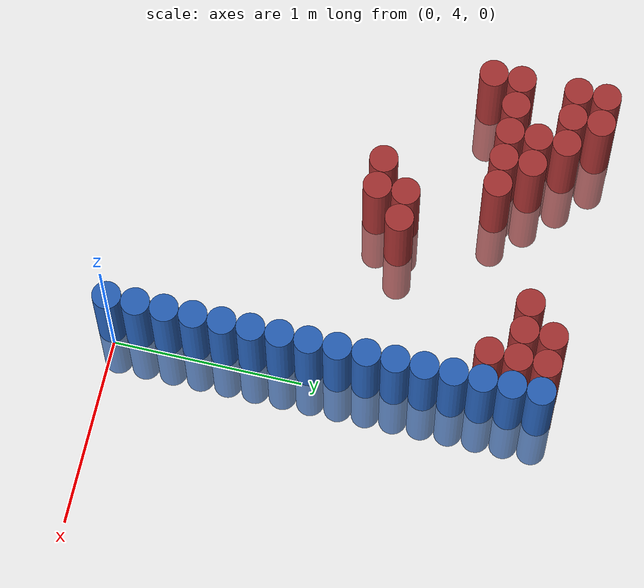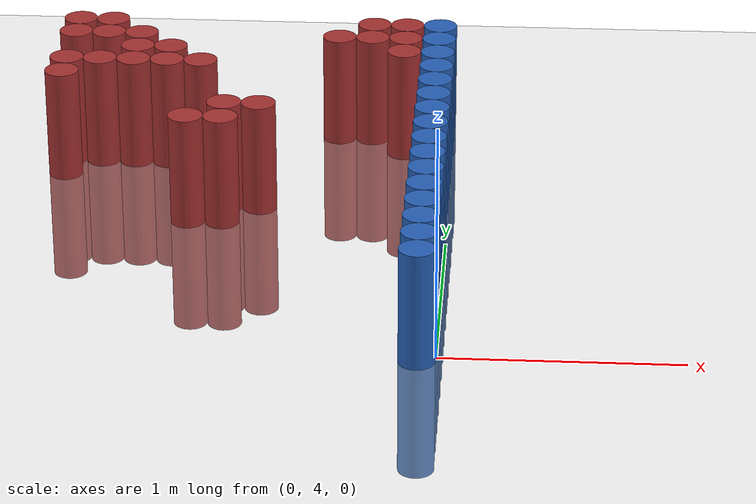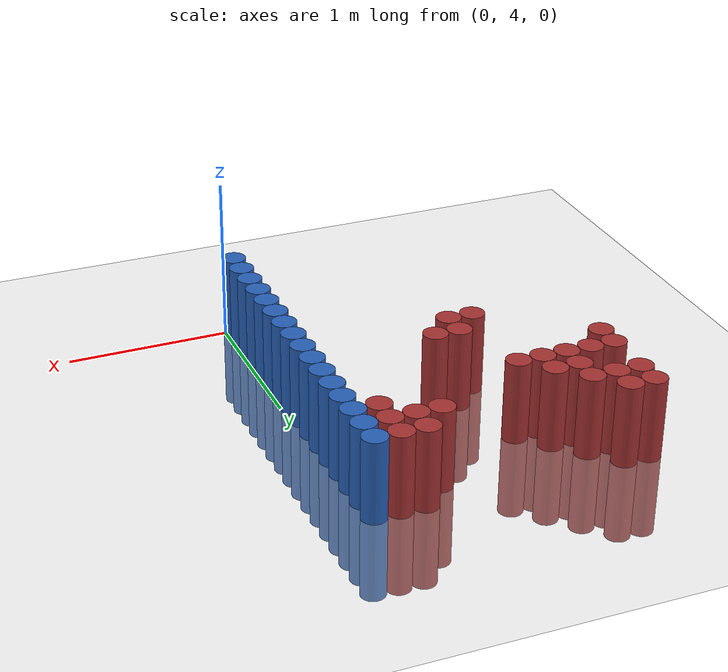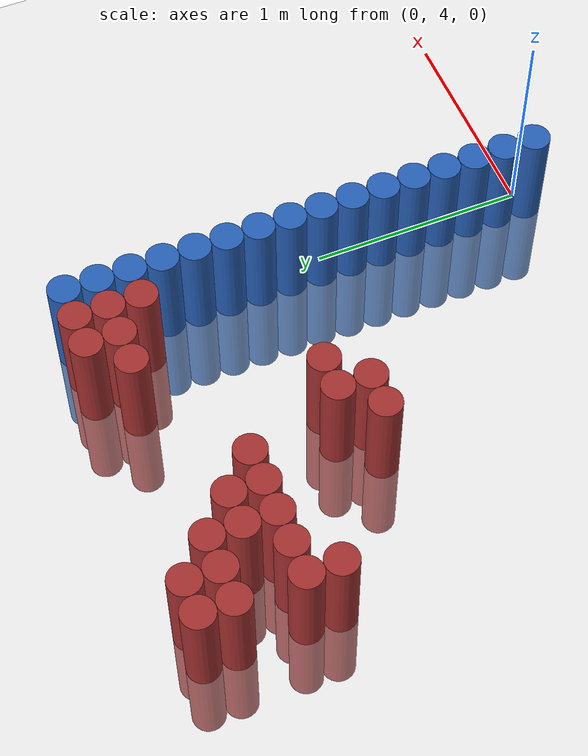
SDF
<sdf version="1.6">
 <world name="default">
  <model name="ground_plane">
   <static>1</static>
   <link name="link">
    <collision name="collision">
     <geometry><plane><normal>0 0 1</normal><size>100 100</size></plane></geometry>
     <surface><friction><ode><mu>100</mu><mu2>50</mu2></ode></friction></surface>
    </collision>
    <visual name="visual">
     <cast_shadows>0</cast_shadows>
     <geometry><plane><normal>0 0 1</normal><size>100 100</size></plane></geometry>
     <material>
      <script><uri>file://media/materials/scripts/gazebo.material</uri><name>Gazebo/Grey</name></script>
     </material>
    </visual>
   </link>
  </model>
  <model name="unit_cylinder_80">
   <static>1</static>
   <pose>-0.075000 3.975000 0.000000 0.000000 0.000000 0.000000</pose>
   <link name="link">
    <inertial>
     <mass>1</mass>
     <inertia><ixx>0.145833</ixx><ixy>0</ixy><ixz>0</ixz><iyy>0.145833</iyy><iyz>0</iyz><izz>0.125</izz></inertia>
    </inertial>
    <collision name="collision">
     <geometry><cylinder><radius>0.075000</radius><length>1</length></cylinder></geometry>
    </collision>
    <visual name="visual">
     <geometry><cylinder><radius>0.075000</radius><length>1</length></cylinder></geometry>
     <material>
      <ambient>0.152000 0.379000 0.720000 1</ambient>
      <diffuse>0.152000 0.379000 0.720000 1</diffuse>
     </material>
     <material>
      <script><name>Gazebo/Grey</name><uri>file://media/materials/scripts/gazebo.material</uri></script>
     </material>
    </visual>
    <sensor name="sensor_contact" type="contact"><contact><collision>collision</collision></contact></sensor>
   </link>
   <plugin filename="gz-sim-touchplugin-system" name="gz::sim::systems::TouchPlugin">
    <target>robot</target>
    <namespace>robot</namespace>
    <time>0.001</time>
    <enabled>true</enabled>
   </plugin>
  </model>
  <model name="unit_cylinder_82">
   <static>1</static>
   <pose>-0.075000 4.125000 0.000000 0.000000 0.000000 0.000000</pose>
   <link name="link">
    <inertial>
     <mass>1</mass>
     <inertia><ixx>0.145833</ixx><ixy>0</ixy><ixz>0</ixz><iyy>0.145833</iyy><iyz>0</iyz><izz>0.125</izz></inertia>
    </inertial>
    <collision name="collision">
     <geometry><cylinder><radius>0.075000</radius><length>1</length></cylinder></geometry>
    </collision>
    <visual name="visual">
     <geometry><cylinder><radius>0.075000</radius><length>1</length></cylinder></geometry>
     <material>
      <ambient>0.152000 0.379000 0.720000 1</ambient>
      <diffuse>0.152000 0.379000 0.720000 1</diffuse>
     </material>
     <material>
      <script><name>Gazebo/Grey</name><uri>file://media/materials/scripts/gazebo.material</uri></script>
     </material>
    </visual>
    <sensor name="sensor_contact" type="contact"><contact><collision>collision</collision></contact></sensor>
   </link>
   <plugin filename="gz-sim-touchplugin-system" name="gz::sim::systems::TouchPlugin">
    <target>robot</target>
    <namespace>robot</namespace>
    <time>0.001</time>
    <enabled>true</enabled>
   </plugin>
  </model>
  <model name="unit_cylinder_84">
   <static>1</static>
   <pose>-0.075000 4.275000 0.000000 0.000000 0.000000 0.000000</pose>
   <link name="link">
    <inertial>
     <mass>1</mass>
     <inertia><ixx>0.145833</ixx><ixy>0</ixy><ixz>0</ixz><iyy>0.145833</iyy><iyz>0</iyz><izz>0.125</izz></inertia>
    </inertial>
    <collision name="collision">
     <geometry><cylinder><radius>0.075000</radius><length>1</length></cylinder></geometry>
    </collision>
    <visual name="visual">
     <geometry><cylinder><radius>0.075000</radius><length>1</length></cylinder></geometry>
     <material>
      <ambient>0.152000 0.379000 0.720000 1</ambient>
      <diffuse>0.152000 0.379000 0.720000 1</diffuse>
     </material>
     <material>
      <script><name>Gazebo/Grey</name><uri>file://media/materials/scripts/gazebo.material</uri></script>
     </material>
    </visual>
    <sensor name="sensor_contact" type="contact"><contact><collision>collision</collision></contact></sensor>
   </link>
   <plugin filename="gz-sim-touchplugin-system" name="gz::sim::systems::TouchPlugin">
    <target>robot</target>
    <namespace>robot</namespace>
    <time>0.001</time>
    <enabled>true</enabled>
   </plugin>
  </model>
  <model name="unit_cylinder_86">
   <static>1</static>
   <pose>-0.075000 4.425000 0.000000 0.000000 0.000000 0.000000</pose>
   <link name="link">
    <inertial>
     <mass>1</mass>
     <inertia><ixx>0.145833</ixx><ixy>0</ixy><ixz>0</ixz><iyy>0.145833</iyy><iyz>0</iyz><izz>0.125</izz></inertia>
    </inertial>
    <collision name="collision">
     <geometry><cylinder><radius>0.075000</radius><length>1</length></cylinder></geometry>
    </collision>
    <visual name="visual">
     <geometry><cylinder><radius>0.075000</radius><length>1</length></cylinder></geometry>
     <material>
      <ambient>0.152000 0.379000 0.720000 1</ambient>
      <diffuse>0.152000 0.379000 0.720000 1</diffuse>
     </material>
     <material>
      <script><name>Gazebo/Grey</name><uri>file://media/materials/scripts/gazebo.material</uri></script>
     </material>
    </visual>
    <sensor name="sensor_contact" type="contact"><contact><collision>collision</collision></contact></sensor>
   </link>
   <plugin filename="gz-sim-touchplugin-system" name="gz::sim::systems::TouchPlugin">
    <target>robot</target>
    <namespace>robot</namespace>
    <time>0.001</time>
    <enabled>true</enabled>
   </plugin>
  </model>
  <model name="unit_cylinder_88">
   <static>1</static>
   <pose>-0.075000 4.575000 0.000000 0.000000 0.000000 0.000000</pose>
   <link name="link">
    <inertial>
     <mass>1</mass>
     <inertia><ixx>0.145833</ixx><ixy>0</ixy><ixz>0</ixz><iyy>0.145833</iyy><iyz>0</iyz><izz>0.125</izz></inertia>
    </inertial>
    <collision name="collision">
     <geometry><cylinder><radius>0.075000</radius><length>1</length></cylinder></geometry>
    </collision>
    <visual name="visual">
     <geometry><cylinder><radius>0.075000</radius><length>1</length></cylinder></geometry>
     <material>
      <ambient>0.152000 0.379000 0.720000 1</ambient>
      <diffuse>0.152000 0.379000 0.720000 1</diffuse>
     </material>
     <material>
      <script><name>Gazebo/Grey</name><uri>file://media/materials/scripts/gazebo.material</uri></script>
     </material>
    </visual>
    <sensor name="sensor_contact" type="contact"><contact><collision>collision</collision></contact></sensor>
   </link>
   <plugin filename="gz-sim-touchplugin-system" name="gz::sim::systems::TouchPlugin">
    <target>robot</target>
    <namespace>robot</namespace>
    <time>0.001</time>
    <enabled>true</enabled>
   </plugin>
  </model>
  <model name="unit_cylinder_90">
   <static>1</static>
   <pose>-0.075000 4.725000 0.000000 0.000000 0.000000 0.000000</pose>
   <link name="link">
    <inertial>
     <mass>1</mass>
     <inertia><ixx>0.145833</ixx><ixy>0</ixy><ixz>0</ixz><iyy>0.145833</iyy><iyz>0</iyz><izz>0.125</izz></inertia>
    </inertial>
    <collision name="collision">
     <geometry><cylinder><radius>0.075000</radius><length>1</length></cylinder></geometry>
    </collision>
    <visual name="visual">
     <geometry><cylinder><radius>0.075000</radius><length>1</length></cylinder></geometry>
     <material>
      <ambient>0.152000 0.379000 0.720000 1</ambient>
      <diffuse>0.152000 0.379000 0.720000 1</diffuse>
     </material>
     <material>
      <script><name>Gazebo/Grey</name><uri>file://media/materials/scripts/gazebo.material</uri></script>
     </material>
    </visual>
    <sensor name="sensor_contact" type="contact"><contact><collision>collision</collision></contact></sensor>
   </link>
   <plugin filename="gz-sim-touchplugin-system" name="gz::sim::systems::TouchPlugin">
    <target>robot</target>
    <namespace>robot</namespace>
    <time>0.001</time>
    <enabled>true</enabled>
   </plugin>
  </model>
  <model name="unit_cylinder_92">
   <static>1</static>
   <pose>-0.075000 4.875000 0.000000 0.000000 0.000000 0.000000</pose>
   <link name="link">
    <inertial>
     <mass>1</mass>
     <inertia><ixx>0.145833</ixx><ixy>0</ixy><ixz>0</ixz><iyy>0.145833</iyy><iyz>0</iyz><izz>0.125</izz></inertia>
    </inertial>
    <collision name="collision">
     <geometry><cylinder><radius>0.075000</radius><length>1</length></cylinder></geometry>
    </collision>
    <visual name="visual">
     <geometry><cylinder><radius>0.075000</radius><length>1</length></cylinder></geometry>
     <material>
      <ambient>0.152000 0.379000 0.720000 1</ambient>
      <diffuse>0.152000 0.379000 0.720000 1</diffuse>
     </material>
     <material>
      <script><name>Gazebo/Grey</name><uri>file://media/materials/scripts/gazebo.material</uri></script>
     </material>
    </visual>
    <sensor name="sensor_contact" type="contact"><contact><collision>collision</collision></contact></sensor>
   </link>
   <plugin filename="gz-sim-touchplugin-system" name="gz::sim::systems::TouchPlugin">
    <target>robot</target>
    <namespace>robot</namespace>
    <time>0.001</time>
    <enabled>true</enabled>
   </plugin>
  </model>
  <model name="unit_cylinder_94">
   <static>1</static>
   <pose>-0.075000 5.025000 0.000000 0.000000 0.000000 0.000000</pose>
   <link name="link">
    <inertial>
     <mass>1</mass>
     <inertia><ixx>0.145833</ixx><ixy>0</ixy><ixz>0</ixz><iyy>0.145833</iyy><iyz>0</iyz><izz>0.125</izz></inertia>
    </inertial>
    <collision name="collision">
     <geometry><cylinder><radius>0.075000</radius><length>1</length></cylinder></geometry>
    </collision>
    <visual name="visual">
     <geometry><cylinder><radius>0.075000</radius><length>1</length></cylinder></geometry>
     <material>
      <ambient>0.152000 0.379000 0.720000 1</ambient>
      <diffuse>0.152000 0.379000 0.720000 1</diffuse>
     </material>
     <material>
      <script><name>Gazebo/Grey</name><uri>file://media/materials/scripts/gazebo.material</uri></script>
     </material>
    </visual>
    <sensor name="sensor_contact" type="contact"><contact><collision>collision</collision></contact></sensor>
   </link>
   <plugin filename="gz-sim-touchplugin-system" name="gz::sim::systems::TouchPlugin">
    <target>robot</target>
    <namespace>robot</namespace>
    <time>0.001</time>
    <enabled>true</enabled>
   </plugin>
  </model>
  <model name="unit_cylinder_193">
   <static>1</static>
   <pose>-1.725000 5.625000 0.000000 0.000000 0.000000 0.000000</pose>
   <link name="link">
    <inertial>
     <mass>1</mass>
     <inertia><ixx>0.145833</ixx><ixy>0</ixy><ixz>0</ixz><iyy>0.145833</iyy><iyz>0</iyz><izz>0.125</izz></inertia>
    </inertial>
    <collision name="collision">
     <geometry><cylinder><radius>0.075000</radius><length>1</length></cylinder></geometry>
    </collision>
    <visual name="visual">
     <geometry><cylinder><radius>0.075000</radius><length>1</length></cylinder></geometry>
     <material>
      <ambient>0.648000 0.192000 0.192000 1</ambient>
      <diffuse>0.648000 0.192000 0.192000 1</diffuse>
     </material>
     <material>
      <script><name>Gazebo/Grey</name><uri>file://media/materials/scripts/gazebo.material</uri></script>
     </material>
    </visual>
    <sensor name="sensor_contact" type="contact"><contact><collision>collision</collision></contact></sensor>
   </link>
   <plugin filename="gz-sim-touchplugin-system" name="gz::sim::systems::TouchPlugin">
    <target>robot</target>
    <namespace>robot</namespace>
    <time>0.001</time>
    <enabled>true</enabled>
   </plugin>
  </model>
  <model name="unit_cylinder_194">
   <static>1</static>
   <pose>-1.725000 5.775000 0.000000 0.000000 0.000000 0.000000</pose>
   <link name="link">
    <inertial>
     <mass>1</mass>
     <inertia><ixx>0.145833</ixx><ixy>0</ixy><ixz>0</ixz><iyy>0.145833</iyy><iyz>0</iyz><izz>0.125</izz></inertia>
    </inertial>
    <collision name="collision">
     <geometry><cylinder><radius>0.075000</radius><length>1</length></cylinder></geometry>
    </collision>
    <visual name="visual">
     <geometry><cylinder><radius>0.075000</radius><length>1</length></cylinder></geometry>
     <material>
      <ambient>0.648000 0.192000 0.192000 1</ambient>
      <diffuse>0.648000 0.192000 0.192000 1</diffuse>
     </material>
     <material>
      <script><name>Gazebo/Grey</name><uri>file://media/materials/scripts/gazebo.material</uri></script>
     </material>
    </visual>
    <sensor name="sensor_contact" type="contact"><contact><collision>collision</collision></contact></sensor>
   </link>
   <plugin filename="gz-sim-touchplugin-system" name="gz::sim::systems::TouchPlugin">
    <target>robot</target>
    <namespace>robot</namespace>
    <time>0.001</time>
    <enabled>true</enabled>
   </plugin>
  </model>
  <model name="unit_cylinder_195">
   <static>1</static>
   <pose>-1.725000 6.075000 0.000000 0.000000 0.000000 0.000000</pose>
   <link name="link">
    <inertial>
     <mass>1</mass>
     <inertia><ixx>0.145833</ixx><ixy>0</ixy><ixz>0</ixz><iyy>0.145833</iyy><iyz>0</iyz><izz>0.125</izz></inertia>
    </inertial>
    <collision name="collision">
     <geometry><cylinder><radius>0.075000</radius><length>1</length></cylinder></geometry>
    </collision>
    <visual name="visual">
     <geometry><cylinder><radius>0.075000</radius><length>1</length></cylinder></geometry>
     <material>
      <ambient>0.648000 0.192000 0.192000 1</ambient>
      <diffuse>0.648000 0.192000 0.192000 1</diffuse>
     </material>
     <material>
      <script><name>Gazebo/Grey</name><uri>file://media/materials/scripts/gazebo.material</uri></script>
     </material>
    </visual>
    <sensor name="sensor_contact" type="contact"><contact><collision>collision</collision></contact></sensor>
   </link>
   <plugin filename="gz-sim-touchplugin-system" name="gz::sim::systems::TouchPlugin">
    <target>robot</target>
    <namespace>robot</namespace>
    <time>0.001</time>
    <enabled>true</enabled>
   </plugin>
  </model>
  <model name="unit_cylinder_196">
   <static>1</static>
   <pose>-1.725000 6.225000 0.000000 0.000000 0.000000 0.000000</pose>
   <link name="link">
    <inertial>
     <mass>1</mass>
     <inertia><ixx>0.145833</ixx><ixy>0</ixy><ixz>0</ixz><iyy>0.145833</iyy><iyz>0</iyz><izz>0.125</izz></inertia>
    </inertial>
    <collision name="collision">
     <geometry><cylinder><radius>0.075000</radius><length>1</length></cylinder></geometry>
    </collision>
    <visual name="visual">
     <geometry><cylinder><radius>0.075000</radius><length>1</length></cylinder></geometry>
     <material>
      <ambient>0.648000 0.192000 0.192000 1</ambient>
      <diffuse>0.648000 0.192000 0.192000 1</diffuse>
     </material>
     <material>
      <script><name>Gazebo/Grey</name><uri>file://media/materials/scripts/gazebo.material</uri></script>
     </material>
    </visual>
    <sensor name="sensor_contact" type="contact"><contact><collision>collision</collision></contact></sensor>
   </link>
   <plugin filename="gz-sim-touchplugin-system" name="gz::sim::systems::TouchPlugin">
    <target>robot</target>
    <namespace>robot</namespace>
    <time>0.001</time>
    <enabled>true</enabled>
   </plugin>
  </model>
  <model name="unit_cylinder_204">
   <static>1</static>
   <pose>-1.575000 5.775000 0.000000 0.000000 0.000000 0.000000</pose>
   <link name="link">
    <inertial>
     <mass>1</mass>
     <inertia><ixx>0.145833</ixx><ixy>0</ixy><ixz>0</ixz><iyy>0.145833</iyy><iyz>0</iyz><izz>0.125</izz></inertia>
    </inertial>
    <collision name="collision">
     <geometry><cylinder><radius>0.075000</radius><length>1</length></cylinder></geometry>
    </collision>
    <visual name="visual">
     <geometry><cylinder><radius>0.075000</radius><length>1</length></cylinder></geometry>
     <material>
      <ambient>0.648000 0.192000 0.192000 1</ambient>
      <diffuse>0.648000 0.192000 0.192000 1</diffuse>
     </material>
     <material>
      <script><name>Gazebo/Grey</name><uri>file://media/materials/scripts/gazebo.material</uri></script>
     </material>
    </visual>
    <sensor name="sensor_contact" type="contact"><contact><collision>collision</collision></contact></sensor>
   </link>
   <plugin filename="gz-sim-touchplugin-system" name="gz::sim::systems::TouchPlugin">
    <target>robot</target>
    <namespace>robot</namespace>
    <time>0.001</time>
    <enabled>true</enabled>
   </plugin>
  </model>
  <model name="unit_cylinder_205">
   <static>1</static>
   <pose>-1.575000 6.075000 0.000000 0.000000 0.000000 0.000000</pose>
   <link name="link">
    <inertial>
     <mass>1</mass>
     <inertia><ixx>0.145833</ixx><ixy>0</ixy><ixz>0</ixz><iyy>0.145833</iyy><iyz>0</iyz><izz>0.125</izz></inertia>
    </inertial>
    <collision name="collision">
     <geometry><cylinder><radius>0.075000</radius><length>1</length></cylinder></geometry>
    </collision>
    <visual name="visual">
     <geometry><cylinder><radius>0.075000</radius><length>1</length></cylinder></geometry>
     <material>
      <ambient>0.648000 0.192000 0.192000 1</ambient>
      <diffuse>0.648000 0.192000 0.192000 1</diffuse>
     </material>
     <material>
      <script><name>Gazebo/Grey</name><uri>file://media/materials/scripts/gazebo.material</uri></script>
     </material>
    </visual>
    <sensor name="sensor_contact" type="contact"><contact><collision>collision</collision></contact></sensor>
   </link>
   <plugin filename="gz-sim-touchplugin-system" name="gz::sim::systems::TouchPlugin">
    <target>robot</target>
    <namespace>robot</namespace>
    <time>0.001</time>
    <enabled>true</enabled>
   </plugin>
  </model>
  <model name="unit_cylinder_206">
   <static>1</static>
   <pose>-1.575000 6.225000 0.000000 0.000000 0.000000 0.000000</pose>
   <link name="link">
    <inertial>
     <mass>1</mass>
     <inertia><ixx>0.145833</ixx><ixy>0</ixy><ixz>0</ixz><iyy>0.145833</iyy><iyz>0</iyz><izz>0.125</izz></inertia>
    </inertial>
    <collision name="collision">
     <geometry><cylinder><radius>0.075000</radius><length>1</length></cylinder></geometry>
    </collision>
    <visual name="visual">
     <geometry><cylinder><radius>0.075000</radius><length>1</length></cylinder></geometry>
     <material>
      <ambient>0.648000 0.192000 0.192000 1</ambient>
      <diffuse>0.648000 0.192000 0.192000 1</diffuse>
     </material>
     <material>
      <script><name>Gazebo/Grey</name><uri>file://media/materials/scripts/gazebo.material</uri></script>
     </material>
    </visual>
    <sensor name="sensor_contact" type="contact"><contact><collision>collision</collision></contact></sensor>
   </link>
   <plugin filename="gz-sim-touchplugin-system" name="gz::sim::systems::TouchPlugin">
    <target>robot</target>
    <namespace>robot</namespace>
    <time>0.001</time>
    <enabled>true</enabled>
   </plugin>
  </model>
  <model name="unit_cylinder_212">
   <static>1</static>
   <pose>-1.425000 5.775000 0.000000 0.000000 0.000000 0.000000</pose>
   <link name="link">
    <inertial>
     <mass>1</mass>
     <inertia><ixx>0.145833</ixx><ixy>0</ixy><ixz>0</ixz><iyy>0.145833</iyy><iyz>0</iyz><izz>0.125</izz></inertia>
    </inertial>
    <collision name="collision">
     <geometry><cylinder><radius>0.075000</radius><length>1</length></cylinder></geometry>
    </collision>
    <visual name="visual">
     <geometry><cylinder><radius>0.075000</radius><length>1</length></cylinder></geometry>
     <material>
      <ambient>0.648000 0.192000 0.192000 1</ambient>
      <diffuse>0.648000 0.192000 0.192000 1</diffuse>
     </material>
     <material>
      <script><name>Gazebo/Grey</name><uri>file://media/materials/scripts/gazebo.material</uri></script>
     </material>
    </visual>
    <sensor name="sensor_contact" type="contact"><contact><collision>collision</collision></contact></sensor>
   </link>
   <plugin filename="gz-sim-touchplugin-system" name="gz::sim::systems::TouchPlugin">
    <target>robot</target>
    <namespace>robot</namespace>
    <time>0.001</time>
    <enabled>true</enabled>
   </plugin>
  </model>
  <model name="unit_cylinder_213">
   <static>1</static>
   <pose>-1.425000 5.925000 0.000000 0.000000 0.000000 0.000000</pose>
   <link name="link">
    <inertial>
     <mass>1</mass>
     <inertia><ixx>0.145833</ixx><ixy>0</ixy><ixz>0</ixz><iyy>0.145833</iyy><iyz>0</iyz><izz>0.125</izz></inertia>
    </inertial>
    <collision name="collision">
     <geometry><cylinder><radius>0.075000</radius><length>1</length></cylinder></geometry>
    </collision>
    <visual name="visual">
     <geometry><cylinder><radius>0.075000</radius><length>1</length></cylinder></geometry>
     <material>
      <ambient>0.648000 0.192000 0.192000 1</ambient>
      <diffuse>0.648000 0.192000 0.192000 1</diffuse>
     </material>
     <material>
      <script><name>Gazebo/Grey</name><uri>file://media/materials/scripts/gazebo.material</uri></script>
     </material>
    </visual>
    <sensor name="sensor_contact" type="contact"><contact><collision>collision</collision></contact></sensor>
   </link>
   <plugin filename="gz-sim-touchplugin-system" name="gz::sim::systems::TouchPlugin">
    <target>robot</target>
    <namespace>robot</namespace>
    <time>0.001</time>
    <enabled>true</enabled>
   </plugin>
  </model>
  <model name="unit_cylinder_214">
   <static>1</static>
   <pose>-1.425000 6.075000 0.000000 0.000000 0.000000 0.000000</pose>
   <link name="link">
    <inertial>
     <mass>1</mass>
     <inertia><ixx>0.145833</ixx><ixy>0</ixy><ixz>0</ixz><iyy>0.145833</iyy><iyz>0</iyz><izz>0.125</izz></inertia>
    </inertial>
    <collision name="collision">
     <geometry><cylinder><radius>0.075000</radius><length>1</length></cylinder></geometry>
    </collision>
    <visual name="visual">
     <geometry><cylinder><radius>0.075000</radius><length>1</length></cylinder></geometry>
     <material>
      <ambient>0.648000 0.192000 0.192000 1</ambient>
      <diffuse>0.648000 0.192000 0.192000 1</diffuse>
     </material>
     <material>
      <script><name>Gazebo/Grey</name><uri>file://media/materials/scripts/gazebo.material</uri></script>
     </material>
    </visual>
    <sensor name="sensor_contact" type="contact"><contact><collision>collision</collision></contact></sensor>
   </link>
   <plugin filename="gz-sim-touchplugin-system" name="gz::sim::systems::TouchPlugin">
    <target>robot</target>
    <namespace>robot</namespace>
    <time>0.001</time>
    <enabled>true</enabled>
   </plugin>
  </model>
  <model name="unit_cylinder_220">
   <static>1</static>
   <pose>-1.275000 5.775000 0.000000 0.000000 0.000000 0.000000</pose>
   <link name="link">
    <inertial>
     <mass>1</mass>
     <inertia><ixx>0.145833</ixx><ixy>0</ixy><ixz>0</ixz><iyy>0.145833</iyy><iyz>0</iyz><izz>0.125</izz></inertia>
    </inertial>
    <collision name="collision">
     <geometry><cylinder><radius>0.075000</radius><length>1</length></cylinder></geometry>
    </collision>
    <visual name="visual">
     <geometry><cylinder><radius>0.075000</radius><length>1</length></cylinder></geometry>
     <material>
      <ambient>0.648000 0.192000 0.192000 1</ambient>
      <diffuse>0.648000 0.192000 0.192000 1</diffuse>
     </material>
     <material>
      <script><name>Gazebo/Grey</name><uri>file://media/materials/scripts/gazebo.material</uri></script>
     </material>
    </visual>
    <sensor name="sensor_contact" type="contact"><contact><collision>collision</collision></contact></sensor>
   </link>
   <plugin filename="gz-sim-touchplugin-system" name="gz::sim::systems::TouchPlugin">
    <target>robot</target>
    <namespace>robot</namespace>
    <time>0.001</time>
    <enabled>true</enabled>
   </plugin>
  </model>
  <model name="unit_cylinder_221">
   <static>1</static>
   <pose>-1.275000 5.925000 0.000000 0.000000 0.000000 0.000000</pose>
   <link name="link">
    <inertial>
     <mass>1</mass>
     <inertia><ixx>0.145833</ixx><ixy>0</ixy><ixz>0</ixz><iyy>0.145833</iyy><iyz>0</iyz><izz>0.125</izz></inertia>
    </inertial>
    <collision name="collision">
     <geometry><cylinder><radius>0.075000</radius><length>1</length></cylinder></geometry>
    </collision>
    <visual name="visual">
     <geometry><cylinder><radius>0.075000</radius><length>1</length></cylinder></geometry>
     <material>
      <ambient>0.648000 0.192000 0.192000 1</ambient>
      <diffuse>0.648000 0.192000 0.192000 1</diffuse>
     </material>
     <material>
      <script><name>Gazebo/Grey</name><uri>file://media/materials/scripts/gazebo.material</uri></script>
     </material>
    </visual>
    <sensor name="sensor_contact" type="contact"><contact><collision>collision</collision></contact></sensor>
   </link>
   <plugin filename="gz-sim-touchplugin-system" name="gz::sim::systems::TouchPlugin">
    <target>robot</target>
    <namespace>robot</namespace>
    <time>0.001</time>
    <enabled>true</enabled>
   </plugin>
  </model>
  <model name="unit_cylinder_226">
   <static>1</static>
   <pose>-1.125000 5.175000 0.000000 0.000000 0.000000 0.000000</pose>
   <link name="link">
    <inertial>
     <mass>1</mass>
     <inertia><ixx>0.145833</ixx><ixy>0</ixy><ixz>0</ixz><iyy>0.145833</iyy><iyz>0</iyz><izz>0.125</izz></inertia>
    </inertial>
    <collision name="collision">
     <geometry><cylinder><radius>0.075000</radius><length>1</length></cylinder></geometry>
    </collision>
    <visual name="visual">
     <geometry><cylinder><radius>0.075000</radius><length>1</length></cylinder></geometry>
     <material>
      <ambient>0.648000 0.192000 0.192000 1</ambient>
      <diffuse>0.648000 0.192000 0.192000 1</diffuse>
     </material>
     <material>
      <script><name>Gazebo/Grey</name><uri>file://media/materials/scripts/gazebo.material</uri></script>
     </material>
    </visual>
    <sensor name="sensor_contact" type="contact"><contact><collision>collision</collision></contact></sensor>
   </link>
   <plugin filename="gz-sim-touchplugin-system" name="gz::sim::systems::TouchPlugin">
    <target>robot</target>
    <namespace>robot</namespace>
    <time>0.001</time>
    <enabled>true</enabled>
   </plugin>
  </model>
  <model name="unit_cylinder_227">
   <static>1</static>
   <pose>-1.125000 5.775000 0.000000 0.000000 0.000000 0.000000</pose>
   <link name="link">
    <inertial>
     <mass>1</mass>
     <inertia><ixx>0.145833</ixx><ixy>0</ixy><ixz>0</ixz><iyy>0.145833</iyy><iyz>0</iyz><izz>0.125</izz></inertia>
    </inertial>
    <collision name="collision">
     <geometry><cylinder><radius>0.075000</radius><length>1</length></cylinder></geometry>
    </collision>
    <visual name="visual">
     <geometry><cylinder><radius>0.075000</radius><length>1</length></cylinder></geometry>
     <material>
      <ambient>0.648000 0.192000 0.192000 1</ambient>
      <diffuse>0.648000 0.192000 0.192000 1</diffuse>
     </material>
     <material>
      <script><name>Gazebo/Grey</name><uri>file://media/materials/scripts/gazebo.material</uri></script>
     </material>
    </visual>
    <sensor name="sensor_contact" type="contact"><contact><collision>collision</collision></contact></sensor>
   </link>
   <plugin filename="gz-sim-touchplugin-system" name="gz::sim::systems::TouchPlugin">
    <target>robot</target>
    <namespace>robot</namespace>
    <time>0.001</time>
    <enabled>true</enabled>
   </plugin>
  </model>
  <model name="unit_cylinder_234">
   <static>1</static>
   <pose>-0.975000 5.175000 0.000000 0.000000 0.000000 0.000000</pose>
   <link name="link">
    <inertial>
     <mass>1</mass>
     <inertia><ixx>0.145833</ixx><ixy>0</ixy><ixz>0</ixz><iyy>0.145833</iyy><iyz>0</iyz><izz>0.125</izz></inertia>
    </inertial>
    <collision name="collision">
     <geometry><cylinder><radius>0.075000</radius><length>1</length></cylinder></geometry>
    </collision>
    <visual name="visual">
     <geometry><cylinder><radius>0.075000</radius><length>1</length></cylinder></geometry>
     <material>
      <ambient>0.648000 0.192000 0.192000 1</ambient>
      <diffuse>0.648000 0.192000 0.192000 1</diffuse>
     </material>
     <material>
      <script><name>Gazebo/Grey</name><uri>file://media/materials/scripts/gazebo.material</uri></script>
     </material>
    </visual>
    <sensor name="sensor_contact" type="contact"><contact><collision>collision</collision></contact></sensor>
   </link>
   <plugin filename="gz-sim-touchplugin-system" name="gz::sim::systems::TouchPlugin">
    <target>robot</target>
    <namespace>robot</namespace>
    <time>0.001</time>
    <enabled>true</enabled>
   </plugin>
  </model>
  <model name="unit_cylinder_235">
   <static>1</static>
   <pose>-0.975000 5.325000 0.000000 0.000000 0.000000 0.000000</pose>
   <link name="link">
    <inertial>
     <mass>1</mass>
     <inertia><ixx>0.145833</ixx><ixy>0</ixy><ixz>0</ixz><iyy>0.145833</iyy><iyz>0</iyz><izz>0.125</izz></inertia>
    </inertial>
    <collision name="collision">
     <geometry><cylinder><radius>0.075000</radius><length>1</length></cylinder></geometry>
    </collision>
    <visual name="visual">
     <geometry><cylinder><radius>0.075000</radius><length>1</length></cylinder></geometry>
     <material>
      <ambient>0.648000 0.192000 0.192000 1</ambient>
      <diffuse>0.648000 0.192000 0.192000 1</diffuse>
     </material>
     <material>
      <script><name>Gazebo/Grey</name><uri>file://media/materials/scripts/gazebo.material</uri></script>
     </material>
    </visual>
    <sensor name="sensor_contact" type="contact"><contact><collision>collision</collision></contact></sensor>
   </link>
   <plugin filename="gz-sim-touchplugin-system" name="gz::sim::systems::TouchPlugin">
    <target>robot</target>
    <namespace>robot</namespace>
    <time>0.001</time>
    <enabled>true</enabled>
   </plugin>
  </model>
  <model name="unit_cylinder_242">
   <static>1</static>
   <pose>-0.825000 5.325000 0.000000 0.000000 0.000000 0.000000</pose>
   <link name="link">
    <inertial>
     <mass>1</mass>
     <inertia><ixx>0.145833</ixx><ixy>0</ixy><ixz>0</ixz><iyy>0.145833</iyy><iyz>0</iyz><izz>0.125</izz></inertia>
    </inertial>
    <collision name="collision">
     <geometry><cylinder><radius>0.075000</radius><length>1</length></cylinder></geometry>
    </collision>
    <visual name="visual">
     <geometry><cylinder><radius>0.075000</radius><length>1</length></cylinder></geometry>
     <material>
      <ambient>0.648000 0.192000 0.192000 1</ambient>
      <diffuse>0.648000 0.192000 0.192000 1</diffuse>
     </material>
     <material>
      <script><name>Gazebo/Grey</name><uri>file://media/materials/scripts/gazebo.material</uri></script>
     </material>
    </visual>
    <sensor name="sensor_contact" type="contact"><contact><collision>collision</collision></contact></sensor>
   </link>
   <plugin filename="gz-sim-touchplugin-system" name="gz::sim::systems::TouchPlugin">
    <target>robot</target>
    <namespace>robot</namespace>
    <time>0.001</time>
    <enabled>true</enabled>
   </plugin>
  </model>
  <model name="unit_cylinder_253">
   <static>1</static>
   <pose>-0.525000 6.075000 0.000000 0.000000 0.000000 0.000000</pose>
   <link name="link">
    <inertial>
     <mass>1</mass>
     <inertia><ixx>0.145833</ixx><ixy>0</ixy><ixz>0</ixz><iyy>0.145833</iyy><iyz>0</iyz><izz>0.125</izz></inertia>
    </inertial>
    <collision name="collision">
     <geometry><cylinder><radius>0.075000</radius><length>1</length></cylinder></geometry>
    </collision>
    <visual name="visual">
     <geometry><cylinder><radius>0.075000</radius><length>1</length></cylinder></geometry>
     <material>
      <ambient>0.648000 0.192000 0.192000 1</ambient>
      <diffuse>0.648000 0.192000 0.192000 1</diffuse>
     </material>
     <material>
      <script><name>Gazebo/Grey</name><uri>file://media/materials/scripts/gazebo.material</uri></script>
     </material>
    </visual>
    <sensor name="sensor_contact" type="contact"><contact><collision>collision</collision></contact></sensor>
   </link>
   <plugin filename="gz-sim-touchplugin-system" name="gz::sim::systems::TouchPlugin">
    <target>robot</target>
    <namespace>robot</namespace>
    <time>0.001</time>
    <enabled>true</enabled>
   </plugin>
  </model>
  <model name="unit_cylinder_261">
   <static>1</static>
   <pose>-0.375000 6.075000 0.000000 0.000000 0.000000 0.000000</pose>
   <link name="link">
    <inertial>
     <mass>1</mass>
     <inertia><ixx>0.145833</ixx><ixy>0</ixy><ixz>0</ixz><iyy>0.145833</iyy><iyz>0</iyz><izz>0.125</izz></inertia>
    </inertial>
    <collision name="collision">
     <geometry><cylinder><radius>0.075000</radius><length>1</length></cylinder></geometry>
    </collision>
    <visual name="visual">
     <geometry><cylinder><radius>0.075000</radius><length>1</length></cylinder></geometry>
     <material>
      <ambient>0.648000 0.192000 0.192000 1</ambient>
      <diffuse>0.648000 0.192000 0.192000 1</diffuse>
     </material>
     <material>
      <script><name>Gazebo/Grey</name><uri>file://media/materials/scripts/gazebo.material</uri></script>
     </material>
    </visual>
    <sensor name="sensor_contact" type="contact"><contact><collision>collision</collision></contact></sensor>
   </link>
   <plugin filename="gz-sim-touchplugin-system" name="gz::sim::systems::TouchPlugin">
    <target>robot</target>
    <namespace>robot</namespace>
    <time>0.001</time>
    <enabled>true</enabled>
   </plugin>
  </model>
  <model name="unit_cylinder_262">
   <static>1</static>
   <pose>-0.375000 6.225000 0.000000 0.000000 0.000000 0.000000</pose>
   <link name="link">
    <inertial>
     <mass>1</mass>
     <inertia><ixx>0.145833</ixx><ixy>0</ixy><ixz>0</ixz><iyy>0.145833</iyy><iyz>0</iyz><izz>0.125</izz></inertia>
    </inertial>
    <collision name="collision">
     <geometry><cylinder><radius>0.075000</radius><length>1</length></cylinder></geometry>
    </collision>
    <visual name="visual">
     <geometry><cylinder><radius>0.075000</radius><length>1</length></cylinder></geometry>
     <material>
      <ambient>0.648000 0.192000 0.192000 1</ambient>
      <diffuse>0.648000 0.192000 0.192000 1</diffuse>
     </material>
     <material>
      <script><name>Gazebo/Grey</name><uri>file://media/materials/scripts/gazebo.material</uri></script>
     </material>
    </visual>
    <sensor name="sensor_contact" type="contact"><contact><collision>collision</collision></contact></sensor>
   </link>
   <plugin filename="gz-sim-touchplugin-system" name="gz::sim::systems::TouchPlugin">
    <target>robot</target>
    <namespace>robot</namespace>
    <time>0.001</time>
    <enabled>true</enabled>
   </plugin>
  </model>
  <model name="unit_cylinder_272">
   <static>1</static>
   <pose>-0.225000 5.925000 0.000000 0.000000 0.000000 0.000000</pose>
   <link name="link">
    <inertial>
     <mass>1</mass>
     <inertia><ixx>0.145833</ixx><ixy>0</ixy><ixz>0</ixz><iyy>0.145833</iyy><iyz>0</iyz><izz>0.125</izz></inertia>
    </inertial>
    <collision name="collision">
     <geometry><cylinder><radius>0.075000</radius><length>1</length></cylinder></geometry>
    </collision>
    <visual name="visual">
     <geometry><cylinder><radius>0.075000</radius><length>1</length></cylinder></geometry>
     <material>
      <ambient>0.648000 0.192000 0.192000 1</ambient>
      <diffuse>0.648000 0.192000 0.192000 1</diffuse>
     </material>
     <material>
      <script><name>Gazebo/Grey</name><uri>file://media/materials/scripts/gazebo.material</uri></script>
     </material>
    </visual>
    <sensor name="sensor_contact" type="contact"><contact><collision>collision</collision></contact></sensor>
   </link>
   <plugin filename="gz-sim-touchplugin-system" name="gz::sim::systems::TouchPlugin">
    <target>robot</target>
    <namespace>robot</namespace>
    <time>0.001</time>
    <enabled>true</enabled>
   </plugin>
  </model>
  <model name="unit_cylinder_273">
   <static>1</static>
   <pose>-0.225000 6.075000 0.000000 0.000000 0.000000 0.000000</pose>
   <link name="link">
    <inertial>
     <mass>1</mass>
     <inertia><ixx>0.145833</ixx><ixy>0</ixy><ixz>0</ixz><iyy>0.145833</iyy><iyz>0</iyz><izz>0.125</izz></inertia>
    </inertial>
    <collision name="collision">
     <geometry><cylinder><radius>0.075000</radius><length>1</length></cylinder></geometry>
    </collision>
    <visual name="visual">
     <geometry><cylinder><radius>0.075000</radius><length>1</length></cylinder></geometry>
     <material>
      <ambient>0.648000 0.192000 0.192000 1</ambient>
      <diffuse>0.648000 0.192000 0.192000 1</diffuse>
     </material>
     <material>
      <script><name>Gazebo/Grey</name><uri>file://media/materials/scripts/gazebo.material</uri></script>
     </material>
    </visual>
    <sensor name="sensor_contact" type="contact"><contact><collision>collision</collision></contact></sensor>
   </link>
   <plugin filename="gz-sim-touchplugin-system" name="gz::sim::systems::TouchPlugin">
    <target>robot</target>
    <namespace>robot</namespace>
    <time>0.001</time>
    <enabled>true</enabled>
   </plugin>
  </model>
  <model name="unit_cylinder_274">
   <static>1</static>
   <pose>-0.225000 6.225000 0.000000 0.000000 0.000000 0.000000</pose>
   <link name="link">
    <inertial>
     <mass>1</mass>
     <inertia><ixx>0.145833</ixx><ixy>0</ixy><ixz>0</ixz><iyy>0.145833</iyy><iyz>0</iyz><izz>0.125</izz></inertia>
    </inertial>
    <collision name="collision">
     <geometry><cylinder><radius>0.075000</radius><length>1</length></cylinder></geometry>
    </collision>
    <visual name="visual">
     <geometry><cylinder><radius>0.075000</radius><length>1</length></cylinder></geometry>
     <material>
      <ambient>0.648000 0.192000 0.192000 1</ambient>
      <diffuse>0.648000 0.192000 0.192000 1</diffuse>
     </material>
     <material>
      <script><name>Gazebo/Grey</name><uri>file://media/materials/scripts/gazebo.material</uri></script>
     </material>
    </visual>
    <sensor name="sensor_contact" type="contact"><contact><collision>collision</collision></contact></sensor>
   </link>
   <plugin filename="gz-sim-touchplugin-system" name="gz::sim::systems::TouchPlugin">
    <target>robot</target>
    <namespace>robot</namespace>
    <time>0.001</time>
    <enabled>true</enabled>
   </plugin>
  </model>
  <model name="unit_cylinder_288">
   <static>1</static>
   <pose>-0.075000 5.175000 0.000000 0.000000 0.000000 0.000000</pose>
   <link name="link">
    <inertial>
     <mass>1</mass>
     <inertia><ixx>0.145833</ixx><ixy>0</ixy><ixz>0</ixz><iyy>0.145833</iyy><iyz>0</iyz><izz>0.125</izz></inertia>
    </inertial>
    <collision name="collision">
     <geometry><cylinder><radius>0.075000</radius><length>1</length></cylinder></geometry>
    </collision>
    <visual name="visual">
     <geometry><cylinder><radius>0.075000</radius><length>1</length></cylinder></geometry>
     <material>
      <ambient>0.152000 0.379000 0.720000 1</ambient>
      <diffuse>0.152000 0.379000 0.720000 1</diffuse>
     </material>
     <material>
      <script><name>Gazebo/Grey</name><uri>file://media/materials/scripts/gazebo.material</uri></script>
     </material>
    </visual>
    <sensor name="sensor_contact" type="contact"><contact><collision>collision</collision></contact></sensor>
   </link>
   <plugin filename="gz-sim-touchplugin-system" name="gz::sim::systems::TouchPlugin">
    <target>robot</target>
    <namespace>robot</namespace>
    <time>0.001</time>
    <enabled>true</enabled>
   </plugin>
  </model>
  <model name="unit_cylinder_289">
   <static>1</static>
   <pose>-0.075000 5.325000 0.000000 0.000000 0.000000 0.000000</pose>
   <link name="link">
    <inertial>
     <mass>1</mass>
     <inertia><ixx>0.145833</ixx><ixy>0</ixy><ixz>0</ixz><iyy>0.145833</iyy><iyz>0</iyz><izz>0.125</izz></inertia>
    </inertial>
    <collision name="collision">
     <geometry><cylinder><radius>0.075000</radius><length>1</length></cylinder></geometry>
    </collision>
    <visual name="visual">
     <geometry><cylinder><radius>0.075000</radius><length>1</length></cylinder></geometry>
     <material>
      <ambient>0.152000 0.379000 0.720000 1</ambient>
      <diffuse>0.152000 0.379000 0.720000 1</diffuse>
     </material>
     <material>
      <script><name>Gazebo/Grey</name><uri>file://media/materials/scripts/gazebo.material</uri></script>
     </material>
    </visual>
    <sensor name="sensor_contact" type="contact"><contact><collision>collision</collision></contact></sensor>
   </link>
   <plugin filename="gz-sim-touchplugin-system" name="gz::sim::systems::TouchPlugin">
    <target>robot</target>
    <namespace>robot</namespace>
    <time>0.001</time>
    <enabled>true</enabled>
   </plugin>
  </model>
  <model name="unit_cylinder_290">
   <static>1</static>
   <pose>-0.075000 5.475000 0.000000 0.000000 0.000000 0.000000</pose>
   <link name="link">
    <inertial>
     <mass>1</mass>
     <inertia><ixx>0.145833</ixx><ixy>0</ixy><ixz>0</ixz><iyy>0.145833</iyy><iyz>0</iyz><izz>0.125</izz></inertia>
    </inertial>
    <collision name="collision">
     <geometry><cylinder><radius>0.075000</radius><length>1</length></cylinder></geometry>
    </collision>
    <visual name="visual">
     <geometry><cylinder><radius>0.075000</radius><length>1</length></cylinder></geometry>
     <material>
      <ambient>0.152000 0.379000 0.720000 1</ambient>
      <diffuse>0.152000 0.379000 0.720000 1</diffuse>
     </material>
     <material>
      <script><name>Gazebo/Grey</name><uri>file://media/materials/scripts/gazebo.material</uri></script>
     </material>
    </visual>
    <sensor name="sensor_contact" type="contact"><contact><collision>collision</collision></contact></sensor>
   </link>
   <plugin filename="gz-sim-touchplugin-system" name="gz::sim::systems::TouchPlugin">
    <target>robot</target>
    <namespace>robot</namespace>
    <time>0.001</time>
    <enabled>true</enabled>
   </plugin>
  </model>
  <model name="unit_cylinder_291">
   <static>1</static>
   <pose>-0.075000 5.625000 0.000000 0.000000 0.000000 0.000000</pose>
   <link name="link">
    <inertial>
     <mass>1</mass>
     <inertia><ixx>0.145833</ixx><ixy>0</ixy><ixz>0</ixz><iyy>0.145833</iyy><iyz>0</iyz><izz>0.125</izz></inertia>
    </inertial>
    <collision name="collision">
     <geometry><cylinder><radius>0.075000</radius><length>1</length></cylinder></geometry>
    </collision>
    <visual name="visual">
     <geometry><cylinder><radius>0.075000</radius><length>1</length></cylinder></geometry>
     <material>
      <ambient>0.152000 0.379000 0.720000 1</ambient>
      <diffuse>0.152000 0.379000 0.720000 1</diffuse>
     </material>
     <material>
      <script><name>Gazebo/Grey</name><uri>file://media/materials/scripts/gazebo.material</uri></script>
     </material>
    </visual>
    <sensor name="sensor_contact" type="contact"><contact><collision>collision</collision></contact></sensor>
   </link>
   <plugin filename="gz-sim-touchplugin-system" name="gz::sim::systems::TouchPlugin">
    <target>robot</target>
    <namespace>robot</namespace>
    <time>0.001</time>
    <enabled>true</enabled>
   </plugin>
  </model>
  <model name="unit_cylinder_292">
   <static>1</static>
   <pose>-0.075000 5.775000 0.000000 0.000000 0.000000 0.000000</pose>
   <link name="link">
    <inertial>
     <mass>1</mass>
     <inertia><ixx>0.145833</ixx><ixy>0</ixy><ixz>0</ixz><iyy>0.145833</iyy><iyz>0</iyz><izz>0.125</izz></inertia>
    </inertial>
    <collision name="collision">
     <geometry><cylinder><radius>0.075000</radius><length>1</length></cylinder></geometry>
    </collision>
    <visual name="visual">
     <geometry><cylinder><radius>0.075000</radius><length>1</length></cylinder></geometry>
     <material>
      <ambient>0.152000 0.379000 0.720000 1</ambient>
      <diffuse>0.152000 0.379000 0.720000 1</diffuse>
     </material>
     <material>
      <script><name>Gazebo/Grey</name><uri>file://media/materials/scripts/gazebo.material</uri></script>
     </material>
    </visual>
    <sensor name="sensor_contact" type="contact"><contact><collision>collision</collision></contact></sensor>
   </link>
   <plugin filename="gz-sim-touchplugin-system" name="gz::sim::systems::TouchPlugin">
    <target>robot</target>
    <namespace>robot</namespace>
    <time>0.001</time>
    <enabled>true</enabled>
   </plugin>
  </model>
  <model name="unit_cylinder_293">
   <static>1</static>
   <pose>-0.075000 5.925000 0.000000 0.000000 0.000000 0.000000</pose>
   <link name="link">
    <inertial>
     <mass>1</mass>
     <inertia><ixx>0.145833</ixx><ixy>0</ixy><ixz>0</ixz><iyy>0.145833</iyy><iyz>0</iyz><izz>0.125</izz></inertia>
    </inertial>
    <collision name="collision">
     <geometry><cylinder><radius>0.075000</radius><length>1</length></cylinder></geometry>
    </collision>
    <visual name="visual">
     <geometry><cylinder><radius>0.075000</radius><length>1</length></cylinder></geometry>
     <material>
      <ambient>0.152000 0.379000 0.720000 1</ambient>
      <diffuse>0.152000 0.379000 0.720000 1</diffuse>
     </material>
     <material>
      <script><name>Gazebo/Grey</name><uri>file://media/materials/scripts/gazebo.material</uri></script>
     </material>
    </visual>
    <sensor name="sensor_contact" type="contact"><contact><collision>collision</collision></contact></sensor>
   </link>
   <plugin filename="gz-sim-touchplugin-system" name="gz::sim::systems::TouchPlugin">
    <target>robot</target>
    <namespace>robot</namespace>
    <time>0.001</time>
    <enabled>true</enabled>
   </plugin>
  </model>
  <model name="unit_cylinder_294">
   <static>1</static>
   <pose>-0.075000 6.075000 0.000000 0.000000 0.000000 0.000000</pose>
   <link name="link">
    <inertial>
     <mass>1</mass>
     <inertia><ixx>0.145833</ixx><ixy>0</ixy><ixz>0</ixz><iyy>0.145833</iyy><iyz>0</iyz><izz>0.125</izz></inertia>
    </inertial>
    <collision name="collision">
     <geometry><cylinder><radius>0.075000</radius><length>1</length></cylinder></geometry>
    </collision>
    <visual name="visual">
     <geometry><cylinder><radius>0.075000</radius><length>1</length></cylinder></geometry>
     <material>
      <ambient>0.152000 0.379000 0.720000 1</ambient>
      <diffuse>0.152000 0.379000 0.720000 1</diffuse>
     </material>
     <material>
      <script><name>Gazebo/Grey</name><uri>file://media/materials/scripts/gazebo.material</uri></script>
     </material>
    </visual>
    <sensor name="sensor_contact" type="contact"><contact><collision>collision</collision></contact></sensor>
   </link>
   <plugin filename="gz-sim-touchplugin-system" name="gz::sim::systems::TouchPlugin">
    <target>robot</target>
    <namespace>robot</namespace>
    <time>0.001</time>
    <enabled>true</enabled>
   </plugin>
  </model>
  <model name="unit_cylinder_295">
   <static>1</static>
   <pose>-0.075000 6.225000 0.000000 0.000000 0.000000 0.000000</pose>
   <link name="link">
    <inertial>
     <mass>1</mass>
     <inertia><ixx>0.145833</ixx><ixy>0</ixy><ixz>0</ixz><iyy>0.145833</iyy><iyz>0</iyz><izz>0.125</izz></inertia>
    </inertial>
    <collision name="collision">
     <geometry><cylinder><radius>0.075000</radius><length>1</length></cylinder></geometry>
    </collision>
    <visual name="visual">
     <geometry><cylinder><radius>0.075000</radius><length>1</length></cylinder></geometry>
     <material>
      <ambient>0.152000 0.379000 0.720000 1</ambient>
      <diffuse>0.152000 0.379000 0.720000 1</diffuse>
     </material>
     <material>
      <script><name>Gazebo/Grey</name><uri>file://media/materials/scripts/gazebo.material</uri></script>
     </material>
    </visual>
    <sensor name="sensor_contact" type="contact"><contact><collision>collision</collision></contact></sensor>
   </link>
   <plugin filename="gz-sim-touchplugin-system" name="gz::sim::systems::TouchPlugin">
    <target>robot</target>
    <namespace>robot</namespace>
    <time>0.001</time>
    <enabled>true</enabled>
   </plugin>
  </model>
 </world>
</sdf>
